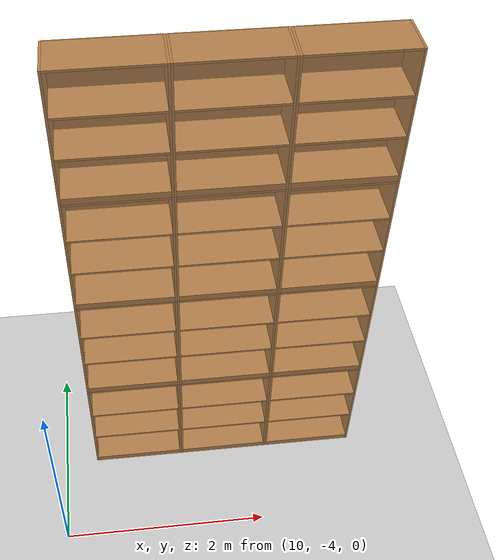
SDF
<sdf version="1.6">
 <world name="default">
  <model name="ground_plane">
   <static>1</static>
   <link name="link">
    <collision name="collision">
     <geometry><plane><normal>0 0 1</normal><size>100 100</size></plane></geometry>
     <surface>
      <contact><collide_bitmask>65535</collide_bitmask></contact>
      <friction><ode><mu>100</mu><mu2>50</mu2></ode></friction>
     </surface>
    </collision>
    <visual name="visual">
     <cast_shadows>0</cast_shadows>
     <geometry><plane><normal>0 0 1</normal><size>100 100</size></plane></geometry>
     <material>
      <script><uri>file://media/materials/scripts/gazebo.material</uri><name>Gazebo/Grey</name></script>
     </material>
    </visual>
   </link>
  </model>
  <model name="shelf2.0_clone_1">
   <model name="shelf1.0">
    <model name="bookshelf">
     <static>1</static>
     <link name="link">
      <inertial><mass>1</mass></inertial>
      <collision name="back">
       <pose>0 0.005 0.6 0 -0 0</pose>
       <geometry><box><size>0.9 0.01 1.2</size></box></geometry>
      </collision>
      <visual name="visual1">
       <pose>0 0.005 0.6 0 -0 0</pose>
       <geometry><box><size>0.9 0.01 1.2</size></box></geometry>
       <material>
        <script><uri>file://media/materials/scripts/gazebo.material</uri><name>Gazebo/Wood</name></script>
       </material>
      </visual>
      <collision name="left_side">
       <pose>0.45 -0.195 0.6 0 -0 0</pose>
       <geometry><box><size>0.02 0.4 1.2</size></box></geometry>
      </collision>
      <visual name="visual2">
       <pose>0.45 -0.195 0.6 0 -0 0</pose>
       <geometry><box><size>0.02 0.4 1.2</size></box></geometry>
       <material>
        <script><uri>file://media/materials/scripts/gazebo.material</uri><name>Gazebo/Wood</name></script>
       </material>
      </visual>
      <collision name="right_side">
       <pose>-0.45 -0.195 0.6 0 -0 0</pose>
       <geometry><box><size>0.02 0.4 1.2</size></box></geometry>
      </collision>
      <visual name="visual3">
       <pose>-0.45 -0.195 0.6 0 -0 0</pose>
       <geometry><box><size>0.02 0.4 1.2</size></box></geometry>
       <material>
        <script><uri>file://media/materials/scripts/gazebo.material</uri><name>Gazebo/Wood</name></script>
       </material>
      </visual>
      <collision name="bottom">
       <pose>0 -0.195 0.03 0 -0 0</pose>
       <geometry><box><size>0.88 0.4 0.06</size></box></geometry>
      </collision>
      <visual name="visual4">
       <pose>0 -0.195 0.03 0 -0 0</pose>
       <geometry><box><size>0.88 0.4 0.06</size></box></geometry>
       <material>
        <script><uri>file://media/materials/scripts/gazebo.material</uri><name>Gazebo/Wood</name></script>
       </material>
      </visual>
      <collision name="top">
       <pose>0 -0.195 1.19 0 -0 0</pose>
       <geometry><box><size>0.88 0.4 0.02</size></box></geometry>
      </collision>
      <visual name="visual5">
       <pose>0 -0.195 1.19 0 -0 0</pose>
       <geometry><box><size>0.88 0.4 0.02</size></box></geometry>
       <material>
        <script><uri>file://media/materials/scripts/gazebo.material</uri><name>Gazebo/Wood</name></script>
       </material>
      </visual>
      <collision name="low_shelf">
       <pose>0 -0.195 0.43 0 -0 0</pose>
       <geometry><box><size>0.88 0.4 0.02</size></box></geometry>
      </collision>
      <visual name="visual6">
       <pose>0 -0.195 0.43 0 -0 0</pose>
       <geometry><box><size>0.88 0.4 0.02</size></box></geometry>
       <material>
        <script><uri>file://media/materials/scripts/gazebo.material</uri><name>Gazebo/Wood</name></script>
       </material>
      </visual>
      <collision name="high_shelf">
       <pose>0 -0.195 0.8 0 -0 0</pose>
       <geometry><box><size>0.88 0.4 0.02</size></box></geometry>
      </collision>
      <visual name="visual7">
       <pose>0 -0.195 0.8 0 -0 0</pose>
       <geometry><box><size>0.88 0.4 0.02</size></box></geometry>
       <material>
        <script><uri>file://media/materials/scripts/gazebo.material</uri><name>Gazebo/Wood</name></script>
       </material>
      </visual>
     </link>
     <pose>1e-06 0 -1.8 0 -0 0</pose>
    </model>
    <model name="bookshelf_clone">
     <static>1</static>
     <link name="link">
      <inertial><mass>1</mass></inertial>
      <collision name="back">
       <pose>0 0.005 0.6 0 -0 0</pose>
       <geometry><box><size>0.9 0.01 1.2</size></box></geometry>
      </collision>
      <visual name="visual1">
       <pose>0 0.005 0.6 0 -0 0</pose>
       <geometry><box><size>0.9 0.01 1.2</size></box></geometry>
       <material>
        <script><uri>file://media/materials/scripts/gazebo.material</uri><name>Gazebo/Wood</name></script>
       </material>
      </visual>
      <collision name="left_side">
       <pose>0.45 -0.195 0.6 0 -0 0</pose>
       <geometry><box><size>0.02 0.4 1.2</size></box></geometry>
      </collision>
      <visual name="visual2">
       <pose>0.45 -0.195 0.6 0 -0 0</pose>
       <geometry><box><size>0.02 0.4 1.2</size></box></geometry>
       <material>
        <script><uri>file://media/materials/scripts/gazebo.material</uri><name>Gazebo/Wood</name></script>
       </material>
      </visual>
      <collision name="right_side">
       <pose>-0.45 -0.195 0.6 0 -0 0</pose>
       <geometry><box><size>0.02 0.4 1.2</size></box></geometry>
      </collision>
      <visual name="visual3">
       <pose>-0.45 -0.195 0.6 0 -0 0</pose>
       <geometry><box><size>0.02 0.4 1.2</size></box></geometry>
       <material>
        <script><uri>file://media/materials/scripts/gazebo.material</uri><name>Gazebo/Wood</name></script>
       </material>
      </visual>
      <collision name="bottom">
       <pose>0 -0.195 0.03 0 -0 0</pose>
       <geometry><box><size>0.88 0.4 0.06</size></box></geometry>
      </collision>
      <visual name="visual4">
       <pose>0 -0.195 0.03 0 -0 0</pose>
       <geometry><box><size>0.88 0.4 0.06</size></box></geometry>
       <material>
        <script><uri>file://media/materials/scripts/gazebo.material</uri><name>Gazebo/Wood</name></script>
       </material>
      </visual>
      <collision name="top">
       <pose>0 -0.195 1.19 0 -0 0</pose>
       <geometry><box><size>0.88 0.4 0.02</size></box></geometry>
      </collision>
      <visual name="visual5">
       <pose>0 -0.195 1.19 0 -0 0</pose>
       <geometry><box><size>0.88 0.4 0.02</size></box></geometry>
       <material>
        <script><uri>file://media/materials/scripts/gazebo.material</uri><name>Gazebo/Wood</name></script>
       </material>
      </visual>
      <collision name="low_shelf">
       <pose>0 -0.195 0.43 0 -0 0</pose>
       <geometry><box><size>0.88 0.4 0.02</size></box></geometry>
      </collision>
      <visual name="visual6">
       <pose>0 -0.195 0.43 0 -0 0</pose>
       <geometry><box><size>0.88 0.4 0.02</size></box></geometry>
       <material>
        <script><uri>file://media/materials/scripts/gazebo.material</uri><name>Gazebo/Wood</name></script>
       </material>
      </visual>
      <collision name="high_shelf">
       <pose>0 -0.195 0.8 0 -0 0</pose>
       <geometry><box><size>0.88 0.4 0.02</size></box></geometry>
      </collision>
      <visual name="visual7">
       <pose>0 -0.195 0.8 0 -0 0</pose>
       <geometry><box><size>0.88 0.4 0.02</size></box></geometry>
       <material>
        <script><uri>file://media/materials/scripts/gazebo.material</uri><name>Gazebo/Wood</name></script>
       </material>
      </visual>
     </link>
     <pose>1e-06 0 -0.600002 0 -0 0</pose>
    </model>
    <model name="bookshelf_clone_0">
     <static>1</static>
     <link name="link">
      <inertial><mass>1</mass></inertial>
      <collision name="back">
       <pose>0 0.005 0.6 0 -0 0</pose>
       <geometry><box><size>0.9 0.01 1.2</size></box></geometry>
      </collision>
      <visual name="visual1">
       <pose>0 0.005 0.6 0 -0 0</pose>
       <geometry><box><size>0.9 0.01 1.2</size></box></geometry>
       <material>
        <script><uri>file://media/materials/scripts/gazebo.material</uri><name>Gazebo/Wood</name></script>
       </material>
      </visual>
      <collision name="left_side">
       <pose>0.45 -0.195 0.6 0 -0 0</pose>
       <geometry><box><size>0.02 0.4 1.2</size></box></geometry>
      </collision>
      <visual name="visual2">
       <pose>0.45 -0.195 0.6 0 -0 0</pose>
       <geometry><box><size>0.02 0.4 1.2</size></box></geometry>
       <material>
        <script><uri>file://media/materials/scripts/gazebo.material</uri><name>Gazebo/Wood</name></script>
       </material>
      </visual>
      <collision name="right_side">
       <pose>-0.45 -0.195 0.6 0 -0 0</pose>
       <geometry><box><size>0.02 0.4 1.2</size></box></geometry>
      </collision>
      <visual name="visual3">
       <pose>-0.45 -0.195 0.6 0 -0 0</pose>
       <geometry><box><size>0.02 0.4 1.2</size></box></geometry>
       <material>
        <script><uri>file://media/materials/scripts/gazebo.material</uri><name>Gazebo/Wood</name></script>
       </material>
      </visual>
      <collision name="bottom">
       <pose>0 -0.195 0.03 0 -0 0</pose>
       <geometry><box><size>0.88 0.4 0.06</size></box></geometry>
      </collision>
      <visual name="visual4">
       <pose>0 -0.195 0.03 0 -0 0</pose>
       <geometry><box><size>0.88 0.4 0.06</size></box></geometry>
       <material>
        <script><uri>file://media/materials/scripts/gazebo.material</uri><name>Gazebo/Wood</name></script>
       </material>
      </visual>
      <collision name="top">
       <pose>0 -0.195 1.19 0 -0 0</pose>
       <geometry><box><size>0.88 0.4 0.02</size></box></geometry>
      </collision>
      <visual name="visual5">
       <pose>0 -0.195 1.19 0 -0 0</pose>
       <geometry><box><size>0.88 0.4 0.02</size></box></geometry>
       <material>
        <script><uri>file://media/materials/scripts/gazebo.material</uri><name>Gazebo/Wood</name></script>
       </material>
      </visual>
      <collision name="low_shelf">
       <pose>0 -0.195 0.43 0 -0 0</pose>
       <geometry><box><size>0.88 0.4 0.02</size></box></geometry>
      </collision>
      <visual name="visual6">
       <pose>0 -0.195 0.43 0 -0 0</pose>
       <geometry><box><size>0.88 0.4 0.02</size></box></geometry>
       <material>
        <script><uri>file://media/materials/scripts/gazebo.material</uri><name>Gazebo/Wood</name></script>
       </material>
      </visual>
      <collision name="high_shelf">
       <pose>0 -0.195 0.8 0 -0 0</pose>
       <geometry><box><size>0.88 0.4 0.02</size></box></geometry>
      </collision>
      <visual name="visual7">
       <pose>0 -0.195 0.8 0 -0 0</pose>
       <geometry><box><size>0.88 0.4 0.02</size></box></geometry>
       <material>
        <script><uri>file://media/materials/scripts/gazebo.material</uri><name>Gazebo/Wood</name></script>
       </material>
      </visual>
     </link>
     <pose>1e-06 0 0.599998 0 -0 0</pose>
    </model>
    <model name="bookshelf_clone_0_clone">
     <static>1</static>
     <link name="link">
      <inertial><mass>1</mass></inertial>
      <collision name="back">
       <pose>0 0.005 0.6 0 -0 0</pose>
       <geometry><box><size>0.9 0.01 1.2</size></box></geometry>
      </collision>
      <visual name="visual1">
       <pose>0 0.005 0.6 0 -0 0</pose>
       <geometry><box><size>0.9 0.01 1.2</size></box></geometry>
       <material>
        <script><uri>file://media/materials/scripts/gazebo.material</uri><name>Gazebo/Wood</name></script>
       </material>
      </visual>
      <collision name="left_side">
       <pose>0.45 -0.195 0.6 0 -0 0</pose>
       <geometry><box><size>0.02 0.4 1.2</size></box></geometry>
      </collision>
      <visual name="visual2">
       <pose>0.45 -0.195 0.6 0 -0 0</pose>
       <geometry><box><size>0.02 0.4 1.2</size></box></geometry>
       <material>
        <script><uri>file://media/materials/scripts/gazebo.material</uri><name>Gazebo/Wood</name></script>
       </material>
      </visual>
      <collision name="right_side">
       <pose>-0.45 -0.195 0.6 0 -0 0</pose>
       <geometry><box><size>0.02 0.4 1.2</size></box></geometry>
      </collision>
      <visual name="visual3">
       <pose>-0.45 -0.195 0.6 0 -0 0</pose>
       <geometry><box><size>0.02 0.4 1.2</size></box></geometry>
       <material>
        <script><uri>file://media/materials/scripts/gazebo.material</uri><name>Gazebo/Wood</name></script>
       </material>
      </visual>
      <collision name="bottom">
       <pose>0 -0.195 0.03 0 -0 0</pose>
       <geometry><box><size>0.88 0.4 0.06</size></box></geometry>
      </collision>
      <visual name="visual4">
       <pose>0 -0.195 0.03 0 -0 0</pose>
       <geometry><box><size>0.88 0.4 0.06</size></box></geometry>
       <material>
        <script><uri>file://media/materials/scripts/gazebo.material</uri><name>Gazebo/Wood</name></script>
       </material>
      </visual>
      <collision name="top">
       <pose>0 -0.195 1.19 0 -0 0</pose>
       <geometry><box><size>0.88 0.4 0.02</size></box></geometry>
      </collision>
      <visual name="visual5">
       <pose>0 -0.195 1.19 0 -0 0</pose>
       <geometry><box><size>0.88 0.4 0.02</size></box></geometry>
       <material>
        <script><uri>file://media/materials/scripts/gazebo.material</uri><name>Gazebo/Wood</name></script>
       </material>
      </visual>
      <collision name="low_shelf">
       <pose>0 -0.195 0.43 0 -0 0</pose>
       <geometry><box><size>0.88 0.4 0.02</size></box></geometry>
      </collision>
      <visual name="visual6">
       <pose>0 -0.195 0.43 0 -0 0</pose>
       <geometry><box><size>0.88 0.4 0.02</size></box></geometry>
       <material>
        <script><uri>file://media/materials/scripts/gazebo.material</uri><name>Gazebo/Wood</name></script>
       </material>
      </visual>
      <collision name="high_shelf">
       <pose>0 -0.195 0.8 0 -0 0</pose>
       <geometry><box><size>0.88 0.4 0.02</size></box></geometry>
      </collision>
      <visual name="visual7">
       <pose>0 -0.195 0.8 0 -0 0</pose>
       <geometry><box><size>0.88 0.4 0.02</size></box></geometry>
       <material>
        <script><uri>file://media/materials/scripts/gazebo.material</uri><name>Gazebo/Wood</name></script>
       </material>
      </visual>
     </link>
     <pose>1e-06 0 1.8 0 -0 0</pose>
    </model>
    <joint name="link_JOINT_3" type="fixed">
     <parent>bookshelf::link</parent>
     <child>bookshelf_clone::link</child>
     <physics>
      <ode><limit><cfm>0</cfm><erp>0.2</erp></limit><suspension><cfm>0</cfm><erp>0.2</erp></suspension></ode>
     </physics>
    </joint>
    <joint name="link_JOINT_4" type="fixed">
     <parent>bookshelf::link</parent>
     <child>bookshelf_clone_0::link</child>
     <physics>
      <ode><limit><cfm>0</cfm><erp>0.2</erp></limit><suspension><cfm>0</cfm><erp>0.2</erp></suspension></ode>
     </physics>
    </joint>
    <joint name="link_JOINT_5" type="fixed">
     <parent>bookshelf::link</parent>
     <child>bookshelf_clone_0_clone::link</child>
     <physics>
      <ode><limit><cfm>0</cfm><erp>0.2</erp></limit><suspension><cfm>0</cfm><erp>0.2</erp></suspension></ode>
     </physics>
    </joint>
    <static>0</static>
    <pose>-0.920027 0 0 0 -0 0</pose>
   </model>
   <model name="shelf1.0_clone">
    <model name="bookshelf">
     <static>1</static>
     <link name="link">
      <inertial><mass>1</mass></inertial>
      <collision name="back">
       <pose>0 0.005 0.6 0 -0 0</pose>
       <geometry><box><size>0.9 0.01 1.2</size></box></geometry>
      </collision>
      <visual name="visual1">
       <pose>0 0.005 0.6 0 -0 0</pose>
       <geometry><box><size>0.9 0.01 1.2</size></box></geometry>
       <material>
        <script><uri>file://media/materials/scripts/gazebo.material</uri><name>Gazebo/Wood</name></script>
       </material>
      </visual>
      <collision name="left_side">
       <pose>0.45 -0.195 0.6 0 -0 0</pose>
       <geometry><box><size>0.02 0.4 1.2</size></box></geometry>
      </collision>
      <visual name="visual2">
       <pose>0.45 -0.195 0.6 0 -0 0</pose>
       <geometry><box><size>0.02 0.4 1.2</size></box></geometry>
       <material>
        <script><uri>file://media/materials/scripts/gazebo.material</uri><name>Gazebo/Wood</name></script>
       </material>
      </visual>
      <collision name="right_side">
       <pose>-0.45 -0.195 0.6 0 -0 0</pose>
       <geometry><box><size>0.02 0.4 1.2</size></box></geometry>
      </collision>
      <visual name="visual3">
       <pose>-0.45 -0.195 0.6 0 -0 0</pose>
       <geometry><box><size>0.02 0.4 1.2</size></box></geometry>
       <material>
        <script><uri>file://media/materials/scripts/gazebo.material</uri><name>Gazebo/Wood</name></script>
       </material>
      </visual>
      <collision name="bottom">
       <pose>0 -0.195 0.03 0 -0 0</pose>
       <geometry><box><size>0.88 0.4 0.06</size></box></geometry>
      </collision>
      <visual name="visual4">
       <pose>0 -0.195 0.03 0 -0 0</pose>
       <geometry><box><size>0.88 0.4 0.06</size></box></geometry>
       <material>
        <script><uri>file://media/materials/scripts/gazebo.material</uri><name>Gazebo/Wood</name></script>
       </material>
      </visual>
      <collision name="top">
       <pose>0 -0.195 1.19 0 -0 0</pose>
       <geometry><box><size>0.88 0.4 0.02</size></box></geometry>
      </collision>
      <visual name="visual5">
       <pose>0 -0.195 1.19 0 -0 0</pose>
       <geometry><box><size>0.88 0.4 0.02</size></box></geometry>
       <material>
        <script><uri>file://media/materials/scripts/gazebo.material</uri><name>Gazebo/Wood</name></script>
       </material>
      </visual>
      <collision name="low_shelf">
       <pose>0 -0.195 0.43 0 -0 0</pose>
       <geometry><box><size>0.88 0.4 0.02</size></box></geometry>
      </collision>
      <visual name="visual6">
       <pose>0 -0.195 0.43 0 -0 0</pose>
       <geometry><box><size>0.88 0.4 0.02</size></box></geometry>
       <material>
        <script><uri>file://media/materials/scripts/gazebo.material</uri><name>Gazebo/Wood</name></script>
       </material>
      </visual>
      <collision name="high_shelf">
       <pose>0 -0.195 0.8 0 -0 0</pose>
       <geometry><box><size>0.88 0.4 0.02</size></box></geometry>
      </collision>
      <visual name="visual7">
       <pose>0 -0.195 0.8 0 -0 0</pose>
       <geometry><box><size>0.88 0.4 0.02</size></box></geometry>
       <material>
        <script><uri>file://media/materials/scripts/gazebo.material</uri><name>Gazebo/Wood</name></script>
       </material>
      </visual>
     </link>
     <pose>1e-06 0 -1.8 0 -0 0</pose>
    </model>
    <model name="bookshelf_clone">
     <static>1</static>
     <link name="link">
      <inertial><mass>1</mass></inertial>
      <collision name="back">
       <pose>0 0.005 0.6 0 -0 0</pose>
       <geometry><box><size>0.9 0.01 1.2</size></box></geometry>
      </collision>
      <visual name="visual1">
       <pose>0 0.005 0.6 0 -0 0</pose>
       <geometry><box><size>0.9 0.01 1.2</size></box></geometry>
       <material>
        <script><uri>file://media/materials/scripts/gazebo.material</uri><name>Gazebo/Wood</name></script>
       </material>
      </visual>
      <collision name="left_side">
       <pose>0.45 -0.195 0.6 0 -0 0</pose>
       <geometry><box><size>0.02 0.4 1.2</size></box></geometry>
      </collision>
      <visual name="visual2">
       <pose>0.45 -0.195 0.6 0 -0 0</pose>
       <geometry><box><size>0.02 0.4 1.2</size></box></geometry>
       <material>
        <script><uri>file://media/materials/scripts/gazebo.material</uri><name>Gazebo/Wood</name></script>
       </material>
      </visual>
      <collision name="right_side">
       <pose>-0.45 -0.195 0.6 0 -0 0</pose>
       <geometry><box><size>0.02 0.4 1.2</size></box></geometry>
      </collision>
      <visual name="visual3">
       <pose>-0.45 -0.195 0.6 0 -0 0</pose>
       <geometry><box><size>0.02 0.4 1.2</size></box></geometry>
       <material>
        <script><uri>file://media/materials/scripts/gazebo.material</uri><name>Gazebo/Wood</name></script>
       </material>
      </visual>
      <collision name="bottom">
       <pose>0 -0.195 0.03 0 -0 0</pose>
       <geometry><box><size>0.88 0.4 0.06</size></box></geometry>
      </collision>
      <visual name="visual4">
       <pose>0 -0.195 0.03 0 -0 0</pose>
       <geometry><box><size>0.88 0.4 0.06</size></box></geometry>
       <material>
        <script><uri>file://media/materials/scripts/gazebo.material</uri><name>Gazebo/Wood</name></script>
       </material>
      </visual>
      <collision name="top">
       <pose>0 -0.195 1.19 0 -0 0</pose>
       <geometry><box><size>0.88 0.4 0.02</size></box></geometry>
      </collision>
      <visual name="visual5">
       <pose>0 -0.195 1.19 0 -0 0</pose>
       <geometry><box><size>0.88 0.4 0.02</size></box></geometry>
       <material>
        <script><uri>file://media/materials/scripts/gazebo.material</uri><name>Gazebo/Wood</name></script>
       </material>
      </visual>
      <collision name="low_shelf">
       <pose>0 -0.195 0.43 0 -0 0</pose>
       <geometry><box><size>0.88 0.4 0.02</size></box></geometry>
      </collision>
      <visual name="visual6">
       <pose>0 -0.195 0.43 0 -0 0</pose>
       <geometry><box><size>0.88 0.4 0.02</size></box></geometry>
       <material>
        <script><uri>file://media/materials/scripts/gazebo.material</uri><name>Gazebo/Wood</name></script>
       </material>
      </visual>
      <collision name="high_shelf">
       <pose>0 -0.195 0.8 0 -0 0</pose>
       <geometry><box><size>0.88 0.4 0.02</size></box></geometry>
      </collision>
      <visual name="visual7">
       <pose>0 -0.195 0.8 0 -0 0</pose>
       <geometry><box><size>0.88 0.4 0.02</size></box></geometry>
       <material>
        <script><uri>file://media/materials/scripts/gazebo.material</uri><name>Gazebo/Wood</name></script>
       </material>
      </visual>
     </link>
     <pose>1e-06 0 -0.600002 0 -0 0</pose>
    </model>
    <model name="bookshelf_clone_0">
     <static>1</static>
     <link name="link">
      <inertial><mass>1</mass></inertial>
      <collision name="back">
       <pose>0 0.005 0.6 0 -0 0</pose>
       <geometry><box><size>0.9 0.01 1.2</size></box></geometry>
      </collision>
      <visual name="visual1">
       <pose>0 0.005 0.6 0 -0 0</pose>
       <geometry><box><size>0.9 0.01 1.2</size></box></geometry>
       <material>
        <script><uri>file://media/materials/scripts/gazebo.material</uri><name>Gazebo/Wood</name></script>
       </material>
      </visual>
      <collision name="left_side">
       <pose>0.45 -0.195 0.6 0 -0 0</pose>
       <geometry><box><size>0.02 0.4 1.2</size></box></geometry>
      </collision>
      <visual name="visual2">
       <pose>0.45 -0.195 0.6 0 -0 0</pose>
       <geometry><box><size>0.02 0.4 1.2</size></box></geometry>
       <material>
        <script><uri>file://media/materials/scripts/gazebo.material</uri><name>Gazebo/Wood</name></script>
       </material>
      </visual>
      <collision name="right_side">
       <pose>-0.45 -0.195 0.6 0 -0 0</pose>
       <geometry><box><size>0.02 0.4 1.2</size></box></geometry>
      </collision>
      <visual name="visual3">
       <pose>-0.45 -0.195 0.6 0 -0 0</pose>
       <geometry><box><size>0.02 0.4 1.2</size></box></geometry>
       <material>
        <script><uri>file://media/materials/scripts/gazebo.material</uri><name>Gazebo/Wood</name></script>
       </material>
      </visual>
      <collision name="bottom">
       <pose>0 -0.195 0.03 0 -0 0</pose>
       <geometry><box><size>0.88 0.4 0.06</size></box></geometry>
      </collision>
      <visual name="visual4">
       <pose>0 -0.195 0.03 0 -0 0</pose>
       <geometry><box><size>0.88 0.4 0.06</size></box></geometry>
       <material>
        <script><uri>file://media/materials/scripts/gazebo.material</uri><name>Gazebo/Wood</name></script>
       </material>
      </visual>
      <collision name="top">
       <pose>0 -0.195 1.19 0 -0 0</pose>
       <geometry><box><size>0.88 0.4 0.02</size></box></geometry>
      </collision>
      <visual name="visual5">
       <pose>0 -0.195 1.19 0 -0 0</pose>
       <geometry><box><size>0.88 0.4 0.02</size></box></geometry>
       <material>
        <script><uri>file://media/materials/scripts/gazebo.material</uri><name>Gazebo/Wood</name></script>
       </material>
      </visual>
      <collision name="low_shelf">
       <pose>0 -0.195 0.43 0 -0 0</pose>
       <geometry><box><size>0.88 0.4 0.02</size></box></geometry>
      </collision>
      <visual name="visual6">
       <pose>0 -0.195 0.43 0 -0 0</pose>
       <geometry><box><size>0.88 0.4 0.02</size></box></geometry>
       <material>
        <script><uri>file://media/materials/scripts/gazebo.material</uri><name>Gazebo/Wood</name></script>
       </material>
      </visual>
      <collision name="high_shelf">
       <pose>0 -0.195 0.8 0 -0 0</pose>
       <geometry><box><size>0.88 0.4 0.02</size></box></geometry>
      </collision>
      <visual name="visual7">
       <pose>0 -0.195 0.8 0 -0 0</pose>
       <geometry><box><size>0.88 0.4 0.02</size></box></geometry>
       <material>
        <script><uri>file://media/materials/scripts/gazebo.material</uri><name>Gazebo/Wood</name></script>
       </material>
      </visual>
     </link>
     <pose>1e-06 0 0.599998 0 -0 0</pose>
    </model>
    <model name="bookshelf_clone_0_clone">
     <static>1</static>
     <link name="link">
      <inertial><mass>1</mass></inertial>
      <collision name="back">
       <pose>0 0.005 0.6 0 -0 0</pose>
       <geometry><box><size>0.9 0.01 1.2</size></box></geometry>
      </collision>
      <visual name="visual1">
       <pose>0 0.005 0.6 0 -0 0</pose>
       <geometry><box><size>0.9 0.01 1.2</size></box></geometry>
       <material>
        <script><uri>file://media/materials/scripts/gazebo.material</uri><name>Gazebo/Wood</name></script>
       </material>
      </visual>
      <collision name="left_side">
       <pose>0.45 -0.195 0.6 0 -0 0</pose>
       <geometry><box><size>0.02 0.4 1.2</size></box></geometry>
      </collision>
      <visual name="visual2">
       <pose>0.45 -0.195 0.6 0 -0 0</pose>
       <geometry><box><size>0.02 0.4 1.2</size></box></geometry>
       <material>
        <script><uri>file://media/materials/scripts/gazebo.material</uri><name>Gazebo/Wood</name></script>
       </material>
      </visual>
      <collision name="right_side">
       <pose>-0.45 -0.195 0.6 0 -0 0</pose>
       <geometry><box><size>0.02 0.4 1.2</size></box></geometry>
      </collision>
      <visual name="visual3">
       <pose>-0.45 -0.195 0.6 0 -0 0</pose>
       <geometry><box><size>0.02 0.4 1.2</size></box></geometry>
       <material>
        <script><uri>file://media/materials/scripts/gazebo.material</uri><name>Gazebo/Wood</name></script>
       </material>
      </visual>
      <collision name="bottom">
       <pose>0 -0.195 0.03 0 -0 0</pose>
       <geometry><box><size>0.88 0.4 0.06</size></box></geometry>
      </collision>
      <visual name="visual4">
       <pose>0 -0.195 0.03 0 -0 0</pose>
       <geometry><box><size>0.88 0.4 0.06</size></box></geometry>
       <material>
        <script><uri>file://media/materials/scripts/gazebo.material</uri><name>Gazebo/Wood</name></script>
       </material>
      </visual>
      <collision name="top">
       <pose>0 -0.195 1.19 0 -0 0</pose>
       <geometry><box><size>0.88 0.4 0.02</size></box></geometry>
      </collision>
      <visual name="visual5">
       <pose>0 -0.195 1.19 0 -0 0</pose>
       <geometry><box><size>0.88 0.4 0.02</size></box></geometry>
       <material>
        <script><uri>file://media/materials/scripts/gazebo.material</uri><name>Gazebo/Wood</name></script>
       </material>
      </visual>
      <collision name="low_shelf">
       <pose>0 -0.195 0.43 0 -0 0</pose>
       <geometry><box><size>0.88 0.4 0.02</size></box></geometry>
      </collision>
      <visual name="visual6">
       <pose>0 -0.195 0.43 0 -0 0</pose>
       <geometry><box><size>0.88 0.4 0.02</size></box></geometry>
       <material>
        <script><uri>file://media/materials/scripts/gazebo.material</uri><name>Gazebo/Wood</name></script>
       </material>
      </visual>
      <collision name="high_shelf">
       <pose>0 -0.195 0.8 0 -0 0</pose>
       <geometry><box><size>0.88 0.4 0.02</size></box></geometry>
      </collision>
      <visual name="visual7">
       <pose>0 -0.195 0.8 0 -0 0</pose>
       <geometry><box><size>0.88 0.4 0.02</size></box></geometry>
       <material>
        <script><uri>file://media/materials/scripts/gazebo.material</uri><name>Gazebo/Wood</name></script>
       </material>
      </visual>
     </link>
     <pose>1e-06 0 1.8 0 -0 0</pose>
    </model>
    <joint name="link_JOINT_3" type="fixed">
     <parent>bookshelf::link</parent>
     <child>bookshelf_clone::link</child>
     <physics>
      <ode><limit><cfm>0</cfm><erp>0.2</erp></limit><suspension><cfm>0</cfm><erp>0.2</erp></suspension></ode>
     </physics>
    </joint>
    <joint name="link_JOINT_4" type="fixed">
     <parent>bookshelf::link</parent>
     <child>bookshelf_clone_0::link</child>
     <physics>
      <ode><limit><cfm>0</cfm><erp>0.2</erp></limit><suspension><cfm>0</cfm><erp>0.2</erp></suspension></ode>
     </physics>
    </joint>
    <joint name="link_JOINT_5" type="fixed">
     <parent>bookshelf::link</parent>
     <child>bookshelf_clone_0_clone::link</child>
     <physics>
      <ode><limit><cfm>0</cfm><erp>0.2</erp></limit><suspension><cfm>0</cfm><erp>0.2</erp></suspension></ode>
     </physics>
    </joint>
    <static>0</static>
    <pose>-2.5e-05 0 0 0 -0 0</pose>
   </model>
   <model name="shelf1.0_clone_0">
    <model name="bookshelf">
     <static>1</static>
     <link name="link">
      <inertial><mass>1</mass></inertial>
      <collision name="back">
       <pose>0 0.005 0.6 0 -0 0</pose>
       <geometry><box><size>0.9 0.01 1.2</size></box></geometry>
      </collision>
      <visual name="visual1">
       <pose>0 0.005 0.6 0 -0 0</pose>
       <geometry><box><size>0.9 0.01 1.2</size></box></geometry>
       <material>
        <script><uri>file://media/materials/scripts/gazebo.material</uri><name>Gazebo/Wood</name></script>
       </material>
      </visual>
      <collision name="left_side">
       <pose>0.45 -0.195 0.6 0 -0 0</pose>
       <geometry><box><size>0.02 0.4 1.2</size></box></geometry>
      </collision>
      <visual name="visual2">
       <pose>0.45 -0.195 0.6 0 -0 0</pose>
       <geometry><box><size>0.02 0.4 1.2</size></box></geometry>
       <material>
        <script><uri>file://media/materials/scripts/gazebo.material</uri><name>Gazebo/Wood</name></script>
       </material>
      </visual>
      <collision name="right_side">
       <pose>-0.45 -0.195 0.6 0 -0 0</pose>
       <geometry><box><size>0.02 0.4 1.2</size></box></geometry>
      </collision>
      <visual name="visual3">
       <pose>-0.45 -0.195 0.6 0 -0 0</pose>
       <geometry><box><size>0.02 0.4 1.2</size></box></geometry>
       <material>
        <script><uri>file://media/materials/scripts/gazebo.material</uri><name>Gazebo/Wood</name></script>
       </material>
      </visual>
      <collision name="bottom">
       <pose>0 -0.195 0.03 0 -0 0</pose>
       <geometry><box><size>0.88 0.4 0.06</size></box></geometry>
      </collision>
      <visual name="visual4">
       <pose>0 -0.195 0.03 0 -0 0</pose>
       <geometry><box><size>0.88 0.4 0.06</size></box></geometry>
       <material>
        <script><uri>file://media/materials/scripts/gazebo.material</uri><name>Gazebo/Wood</name></script>
       </material>
      </visual>
      <collision name="top">
       <pose>0 -0.195 1.19 0 -0 0</pose>
       <geometry><box><size>0.88 0.4 0.02</size></box></geometry>
      </collision>
      <visual name="visual5">
       <pose>0 -0.195 1.19 0 -0 0</pose>
       <geometry><box><size>0.88 0.4 0.02</size></box></geometry>
       <material>
        <script><uri>file://media/materials/scripts/gazebo.material</uri><name>Gazebo/Wood</name></script>
       </material>
      </visual>
      <collision name="low_shelf">
       <pose>0 -0.195 0.43 0 -0 0</pose>
       <geometry><box><size>0.88 0.4 0.02</size></box></geometry>
      </collision>
      <visual name="visual6">
       <pose>0 -0.195 0.43 0 -0 0</pose>
       <geometry><box><size>0.88 0.4 0.02</size></box></geometry>
       <material>
        <script><uri>file://media/materials/scripts/gazebo.material</uri><name>Gazebo/Wood</name></script>
       </material>
      </visual>
      <collision name="high_shelf">
       <pose>0 -0.195 0.8 0 -0 0</pose>
       <geometry><box><size>0.88 0.4 0.02</size></box></geometry>
      </collision>
      <visual name="visual7">
       <pose>0 -0.195 0.8 0 -0 0</pose>
       <geometry><box><size>0.88 0.4 0.02</size></box></geometry>
       <material>
        <script><uri>file://media/materials/scripts/gazebo.material</uri><name>Gazebo/Wood</name></script>
       </material>
      </visual>
     </link>
     <pose>1e-06 0 -1.8 0 -0 0</pose>
    </model>
    <model name="bookshelf_clone">
     <static>1</static>
     <link name="link">
      <inertial><mass>1</mass></inertial>
      <collision name="back">
       <pose>0 0.005 0.6 0 -0 0</pose>
       <geometry><box><size>0.9 0.01 1.2</size></box></geometry>
      </collision>
      <visual name="visual1">
       <pose>0 0.005 0.6 0 -0 0</pose>
       <geometry><box><size>0.9 0.01 1.2</size></box></geometry>
       <material>
        <script><uri>file://media/materials/scripts/gazebo.material</uri><name>Gazebo/Wood</name></script>
       </material>
      </visual>
      <collision name="left_side">
       <pose>0.45 -0.195 0.6 0 -0 0</pose>
       <geometry><box><size>0.02 0.4 1.2</size></box></geometry>
      </collision>
      <visual name="visual2">
       <pose>0.45 -0.195 0.6 0 -0 0</pose>
       <geometry><box><size>0.02 0.4 1.2</size></box></geometry>
       <material>
        <script><uri>file://media/materials/scripts/gazebo.material</uri><name>Gazebo/Wood</name></script>
       </material>
      </visual>
      <collision name="right_side">
       <pose>-0.45 -0.195 0.6 0 -0 0</pose>
       <geometry><box><size>0.02 0.4 1.2</size></box></geometry>
      </collision>
      <visual name="visual3">
       <pose>-0.45 -0.195 0.6 0 -0 0</pose>
       <geometry><box><size>0.02 0.4 1.2</size></box></geometry>
       <material>
        <script><uri>file://media/materials/scripts/gazebo.material</uri><name>Gazebo/Wood</name></script>
       </material>
      </visual>
      <collision name="bottom">
       <pose>0 -0.195 0.03 0 -0 0</pose>
       <geometry><box><size>0.88 0.4 0.06</size></box></geometry>
      </collision>
      <visual name="visual4">
       <pose>0 -0.195 0.03 0 -0 0</pose>
       <geometry><box><size>0.88 0.4 0.06</size></box></geometry>
       <material>
        <script><uri>file://media/materials/scripts/gazebo.material</uri><name>Gazebo/Wood</name></script>
       </material>
      </visual>
      <collision name="top">
       <pose>0 -0.195 1.19 0 -0 0</pose>
       <geometry><box><size>0.88 0.4 0.02</size></box></geometry>
      </collision>
      <visual name="visual5">
       <pose>0 -0.195 1.19 0 -0 0</pose>
       <geometry><box><size>0.88 0.4 0.02</size></box></geometry>
       <material>
        <script><uri>file://media/materials/scripts/gazebo.material</uri><name>Gazebo/Wood</name></script>
       </material>
      </visual>
      <collision name="low_shelf">
       <pose>0 -0.195 0.43 0 -0 0</pose>
       <geometry><box><size>0.88 0.4 0.02</size></box></geometry>
      </collision>
      <visual name="visual6">
       <pose>0 -0.195 0.43 0 -0 0</pose>
       <geometry><box><size>0.88 0.4 0.02</size></box></geometry>
       <material>
        <script><uri>file://media/materials/scripts/gazebo.material</uri><name>Gazebo/Wood</name></script>
       </material>
      </visual>
      <collision name="high_shelf">
       <pose>0 -0.195 0.8 0 -0 0</pose>
       <geometry><box><size>0.88 0.4 0.02</size></box></geometry>
      </collision>
      <visual name="visual7">
       <pose>0 -0.195 0.8 0 -0 0</pose>
       <geometry><box><size>0.88 0.4 0.02</size></box></geometry>
       <material>
        <script><uri>file://media/materials/scripts/gazebo.material</uri><name>Gazebo/Wood</name></script>
       </material>
      </visual>
     </link>
     <pose>1e-06 0 -0.600002 0 -0 0</pose>
    </model>
    <model name="bookshelf_clone_0">
     <static>1</static>
     <link name="link">
      <inertial><mass>1</mass></inertial>
      <collision name="back">
       <pose>0 0.005 0.6 0 -0 0</pose>
       <geometry><box><size>0.9 0.01 1.2</size></box></geometry>
      </collision>
      <visual name="visual1">
       <pose>0 0.005 0.6 0 -0 0</pose>
       <geometry><box><size>0.9 0.01 1.2</size></box></geometry>
       <material>
        <script><uri>file://media/materials/scripts/gazebo.material</uri><name>Gazebo/Wood</name></script>
       </material>
      </visual>
      <collision name="left_side">
       <pose>0.45 -0.195 0.6 0 -0 0</pose>
       <geometry><box><size>0.02 0.4 1.2</size></box></geometry>
      </collision>
      <visual name="visual2">
       <pose>0.45 -0.195 0.6 0 -0 0</pose>
       <geometry><box><size>0.02 0.4 1.2</size></box></geometry>
       <material>
        <script><uri>file://media/materials/scripts/gazebo.material</uri><name>Gazebo/Wood</name></script>
       </material>
      </visual>
      <collision name="right_side">
       <pose>-0.45 -0.195 0.6 0 -0 0</pose>
       <geometry><box><size>0.02 0.4 1.2</size></box></geometry>
      </collision>
      <visual name="visual3">
       <pose>-0.45 -0.195 0.6 0 -0 0</pose>
       <geometry><box><size>0.02 0.4 1.2</size></box></geometry>
       <material>
        <script><uri>file://media/materials/scripts/gazebo.material</uri><name>Gazebo/Wood</name></script>
       </material>
      </visual>
      <collision name="bottom">
       <pose>0 -0.195 0.03 0 -0 0</pose>
       <geometry><box><size>0.88 0.4 0.06</size></box></geometry>
      </collision>
      <visual name="visual4">
       <pose>0 -0.195 0.03 0 -0 0</pose>
       <geometry><box><size>0.88 0.4 0.06</size></box></geometry>
       <material>
        <script><uri>file://media/materials/scripts/gazebo.material</uri><name>Gazebo/Wood</name></script>
       </material>
      </visual>
      <collision name="top">
       <pose>0 -0.195 1.19 0 -0 0</pose>
       <geometry><box><size>0.88 0.4 0.02</size></box></geometry>
      </collision>
      <visual name="visual5">
       <pose>0 -0.195 1.19 0 -0 0</pose>
       <geometry><box><size>0.88 0.4 0.02</size></box></geometry>
       <material>
        <script><uri>file://media/materials/scripts/gazebo.material</uri><name>Gazebo/Wood</name></script>
       </material>
      </visual>
      <collision name="low_shelf">
       <pose>0 -0.195 0.43 0 -0 0</pose>
       <geometry><box><size>0.88 0.4 0.02</size></box></geometry>
      </collision>
      <visual name="visual6">
       <pose>0 -0.195 0.43 0 -0 0</pose>
       <geometry><box><size>0.88 0.4 0.02</size></box></geometry>
       <material>
        <script><uri>file://media/materials/scripts/gazebo.material</uri><name>Gazebo/Wood</name></script>
       </material>
      </visual>
      <collision name="high_shelf">
       <pose>0 -0.195 0.8 0 -0 0</pose>
       <geometry><box><size>0.88 0.4 0.02</size></box></geometry>
      </collision>
      <visual name="visual7">
       <pose>0 -0.195 0.8 0 -0 0</pose>
       <geometry><box><size>0.88 0.4 0.02</size></box></geometry>
       <material>
        <script><uri>file://media/materials/scripts/gazebo.material</uri><name>Gazebo/Wood</name></script>
       </material>
      </visual>
     </link>
     <pose>1e-06 0 0.599998 0 -0 0</pose>
    </model>
    <model name="bookshelf_clone_0_clone">
     <static>1</static>
     <link name="link">
      <inertial><mass>1</mass></inertial>
      <collision name="back">
       <pose>0 0.005 0.6 0 -0 0</pose>
       <geometry><box><size>0.9 0.01 1.2</size></box></geometry>
      </collision>
      <visual name="visual1">
       <pose>0 0.005 0.6 0 -0 0</pose>
       <geometry><box><size>0.9 0.01 1.2</size></box></geometry>
       <material>
        <script><uri>file://media/materials/scripts/gazebo.material</uri><name>Gazebo/Wood</name></script>
       </material>
      </visual>
      <collision name="left_side">
       <pose>0.45 -0.195 0.6 0 -0 0</pose>
       <geometry><box><size>0.02 0.4 1.2</size></box></geometry>
      </collision>
      <visual name="visual2">
       <pose>0.45 -0.195 0.6 0 -0 0</pose>
       <geometry><box><size>0.02 0.4 1.2</size></box></geometry>
       <material>
        <script><uri>file://media/materials/scripts/gazebo.material</uri><name>Gazebo/Wood</name></script>
       </material>
      </visual>
      <collision name="right_side">
       <pose>-0.45 -0.195 0.6 0 -0 0</pose>
       <geometry><box><size>0.02 0.4 1.2</size></box></geometry>
      </collision>
      <visual name="visual3">
       <pose>-0.45 -0.195 0.6 0 -0 0</pose>
       <geometry><box><size>0.02 0.4 1.2</size></box></geometry>
       <material>
        <script><uri>file://media/materials/scripts/gazebo.material</uri><name>Gazebo/Wood</name></script>
       </material>
      </visual>
      <collision name="bottom">
       <pose>0 -0.195 0.03 0 -0 0</pose>
       <geometry><box><size>0.88 0.4 0.06</size></box></geometry>
      </collision>
      <visual name="visual4">
       <pose>0 -0.195 0.03 0 -0 0</pose>
       <geometry><box><size>0.88 0.4 0.06</size></box></geometry>
       <material>
        <script><uri>file://media/materials/scripts/gazebo.material</uri><name>Gazebo/Wood</name></script>
       </material>
      </visual>
      <collision name="top">
       <pose>0 -0.195 1.19 0 -0 0</pose>
       <geometry><box><size>0.88 0.4 0.02</size></box></geometry>
      </collision>
      <visual name="visual5">
       <pose>0 -0.195 1.19 0 -0 0</pose>
       <geometry><box><size>0.88 0.4 0.02</size></box></geometry>
       <material>
        <script><uri>file://media/materials/scripts/gazebo.material</uri><name>Gazebo/Wood</name></script>
       </material>
      </visual>
      <collision name="low_shelf">
       <pose>0 -0.195 0.43 0 -0 0</pose>
       <geometry><box><size>0.88 0.4 0.02</size></box></geometry>
      </collision>
      <visual name="visual6">
       <pose>0 -0.195 0.43 0 -0 0</pose>
       <geometry><box><size>0.88 0.4 0.02</size></box></geometry>
       <material>
        <script><uri>file://media/materials/scripts/gazebo.material</uri><name>Gazebo/Wood</name></script>
       </material>
      </visual>
      <collision name="high_shelf">
       <pose>0 -0.195 0.8 0 -0 0</pose>
       <geometry><box><size>0.88 0.4 0.02</size></box></geometry>
      </collision>
      <visual name="visual7">
       <pose>0 -0.195 0.8 0 -0 0</pose>
       <geometry><box><size>0.88 0.4 0.02</size></box></geometry>
       <material>
        <script><uri>file://media/materials/scripts/gazebo.material</uri><name>Gazebo/Wood</name></script>
       </material>
      </visual>
     </link>
     <pose>1e-06 0 1.8 0 -0 0</pose>
    </model>
    <joint name="link_JOINT_3" type="fixed">
     <parent>bookshelf::link</parent>
     <child>bookshelf_clone::link</child>
     <physics>
      <ode><limit><cfm>0</cfm><erp>0.2</erp></limit><suspension><cfm>0</cfm><erp>0.2</erp></suspension></ode>
     </physics>
    </joint>
    <joint name="link_JOINT_4" type="fixed">
     <parent>bookshelf::link</parent>
     <child>bookshelf_clone_0::link</child>
     <physics>
      <ode><limit><cfm>0</cfm><erp>0.2</erp></limit><suspension><cfm>0</cfm><erp>0.2</erp></suspension></ode>
     </physics>
    </joint>
    <joint name="link_JOINT_5" type="fixed">
     <parent>bookshelf::link</parent>
     <child>bookshelf_clone_0_clone::link</child>
     <physics>
      <ode><limit><cfm>0</cfm><erp>0.2</erp></limit><suspension><cfm>0</cfm><erp>0.2</erp></suspension></ode>
     </physics>
    </joint>
    <static>0</static>
    <pose>0.919977 0 0 0 -0 0</pose>
   </model>
   <joint name="link_JOINT_0" type="fixed">
    <parent>shelf1.0::bookshelf::link</parent>
    <child>shelf1.0_clone::bookshelf::link</child>
    <physics>
     <ode><limit><cfm>0</cfm><erp>0.2</erp></limit><suspension><cfm>0</cfm><erp>0.2</erp></suspension></ode>
    </physics>
   </joint>
   <joint name="link_JOINT_1" type="fixed">
    <parent>shelf1.0::bookshelf::link</parent>
    <child>shelf1.0_clone_0::bookshelf::link</child>
    <physics>
     <ode><limit><cfm>0</cfm><erp>0.2</erp></limit><suspension><cfm>0</cfm><erp>0.2</erp></suspension></ode>
    </physics>
   </joint>
   <static>0</static>
   <pose>11.7013 -2.72475 1.80812 0 -0 0</pose>
  </model>
 </world>
</sdf>
